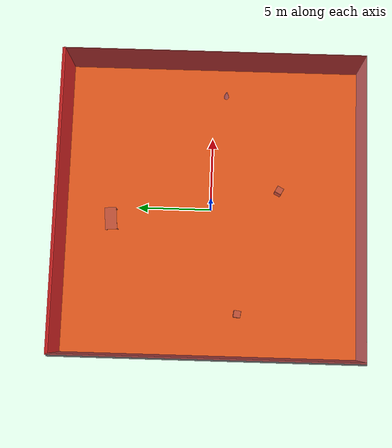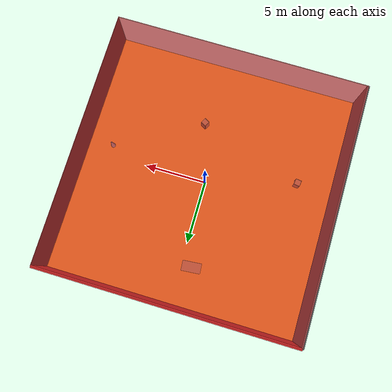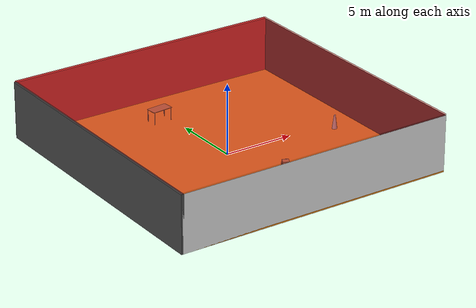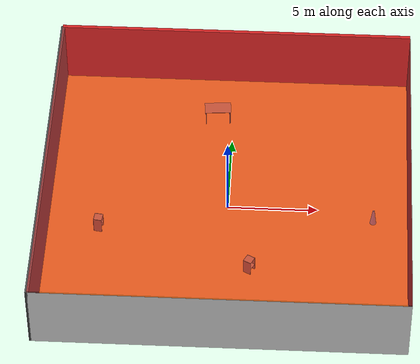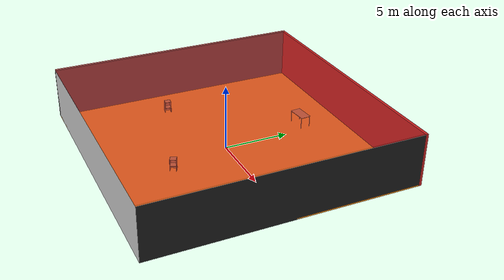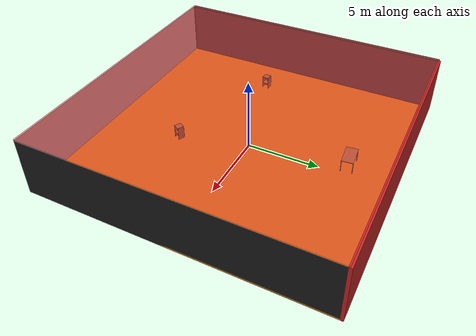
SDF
<sdf version="1.4">
 <world name="default">
  <physics type="ode">
   <max_step_size>0.001</max_step_size>
   <real_time_factor>1</real_time_factor>
   <real_time_update_rate>1000</real_time_update_rate>
   <gravity>0 0 -9.8</gravity>
  </physics>
  <scene><ambient>0.4 0.4 0.4 1</ambient><background>0.7 0.7 0.7 1</background><shadows>1</shadows></scene>
  <model name="Surrounding">
   <static>1</static>
   <link name="Ceiling">
    <collision name="Ceiling_Collision"><geometry><box><size>20 20 0.1</size></box></geometry></collision>
    <visual name="Ceiling_Visual">
     <geometry><box><size>20 20 0.1</size></box></geometry>
     <material>
      <script><uri>file://media/materials/scripts/gazebo.material</uri><name>Gazebo/RedTransparent</name></script>
     </material>
    </visual>
    <pose>0 0 4.05 0 0 0</pose>
   </link>
   <link name="Wall_South">
    <collision name="Wall_South_Collision">
     <geometry><box><size>20 0 4</size></box></geometry>
     <pose>0 0 2 0 -0 0</pose>
    </collision>
    <visual name="Wall_South_Visual">
     <pose>0 0 2 0 -0 0</pose>
     <geometry><box><size>20 0 4</size></box></geometry>
     <material>
      <script><uri>file://media/materials/scripts/gazebo.material</uri><name>Gazebo/WhiteGlow</name></script>
     </material>
    </visual>
    <velocity_decay><linear>0</linear><angular>0</angular></velocity_decay>
    <pose>0 -10 0 0 -0 0</pose>
   </link>
   <link name="Wall_East">
    <collision name="Wall_21_Collision">
     <geometry><box><size>20 0 4</size></box></geometry>
     <pose>0 0 2 0 -0 0</pose>
    </collision>
    <visual name="Wall_21_Visual">
     <pose>0 0 2 0 -0 0</pose>
     <geometry><box><size>20 0 4</size></box></geometry>
     <material>
      <script><uri>file://media/materials/scripts/gazebo.material</uri><name>Gazebo/Black</name></script>
     </material>
    </visual>
    <velocity_decay><linear>0</linear><angular>0</angular></velocity_decay>
    <pose>10 0 0 0 -0 1.5708</pose>
   </link>
   <link name="Wall_North">
    <collision name="Wall_22_Collision">
     <geometry><box><size>20 0.2 4</size></box></geometry>
     <pose>0 0 2 0 -0 0</pose>
    </collision>
    <visual name="Wall_22_Visual">
     <pose>0 0 2 0 -0 0</pose>
     <geometry><box><size>20 0.2 4</size></box></geometry>
     <material>
      <script><uri>file://media/materials/scripts/gazebo.material</uri><name>Gazebo/RedBright</name></script>
     </material>
    </visual>
    <velocity_decay><linear>0</linear><angular>0</angular></velocity_decay>
    <pose>0 10 0 0 -0 0</pose>
   </link>
   <link name="Wall_West">
    <collision name="Wall_23_Collision">
     <geometry><box><size>20 0.2 4</size></box></geometry>
     <pose>0 0 2 0 -0 0</pose>
    </collision>
    <visual name="Wall_23_Visual">
     <pose>0 0 2 0 -0 0</pose>
     <geometry><box><size>20 0.2 4</size></box></geometry>
     <material>
      <script><uri>file://media/materials/scripts/gazebo.material</uri><name>Gazebo/Road</name></script>
     </material>
    </visual>
    <velocity_decay><linear>0</linear><angular>0</angular></velocity_decay>
    <pose>-10 0 0 0 0 -1.5708</pose>
   </link>
   <link name="Ground_link">
    <collision name="collision">
     <pose>0 0 .05 0 -0 0</pose>
     <geometry><box><size>20 20 0.1</size></box></geometry>
    </collision>
    <visual name="visual">
     <pose>0 0 .05 0 -0 0</pose>
     <geometry><box><size>20 20 0.1</size></box></geometry>
     <material>
      <script><uri>file://media/materials/scripts/gazebo.material</uri><name>Gazebo/Orange</name></script>
     </material>
    </visual>
   </link>
   <static>1</static>
  </model>
  <spherical_coordinates>
   <surface_model>EARTH_WGS84</surface_model>
   <latitude_deg>0</latitude_deg>
   <longitude_deg>0</longitude_deg>
   <elevation>0</elevation>
   <heading_deg>0</heading_deg>
  </spherical_coordinates>
  <light name="lightball_0" type="diffuse">
   <diffuse>0.8 0.8 0.8 1</diffuse>
   <specular>0.2 0.2 0.2 1</specular>
   <attenuation>
    <range>100</range>
    <constant>0.7</constant>
    <linear>0.01</linear>
    <quadratic>0.001</quadratic>
   </attenuation>
   <direction>-0.5 0.1 -0.9</direction>
   <pose>9.5562394057 -4.61846901533 0.956193848532 0 0 0</pose>
  </light>
  <light name="lightball_1" type="diffuse">
   <diffuse>0.8 0.8 0.8 1</diffuse>
   <specular>0.2 0.2 0.2 1</specular>
   <attenuation>
    <range>100</range>
    <constant>0.7</constant>
    <linear>0.01</linear>
    <quadratic>0.001</quadratic>
   </attenuation>
   <direction>-0.5 0.1 -0.9</direction>
   <pose>3.09915094107 -2.31648687753 2.70738407003 0 0 0</pose>
  </light>
  <light name="lightball_2" type="diffuse">
   <diffuse>0.8 0.8 0.8 1</diffuse>
   <specular>0.2 0.2 0.2 1</specular>
   <attenuation>
    <range>100</range>
    <constant>0.7</constant>
    <linear>0.01</linear>
    <quadratic>0.001</quadratic>
   </attenuation>
   <direction>-0.5 0.1 -0.9</direction>
   <pose>-8.15995119929 6.70640957548 2.36723143993 0 0 0</pose>
  </light>
  <light name="lightball_3" type="diffuse">
   <diffuse>0.8 0.8 0.8 1</diffuse>
   <specular>0.2 0.2 0.2 1</specular>
   <attenuation>
    <range>100</range>
    <constant>0.7</constant>
    <linear>0.01</linear>
    <quadratic>0.001</quadratic>
   </attenuation>
   <direction>-0.5 0.1 -0.9</direction>
   <pose>3.13941032212 6.86291462505 3.77972783825 0 0 0</pose>
  </light>
  <light name="lightball_4" type="diffuse">
   <diffuse>0.8 0.8 0.8 1</diffuse>
   <specular>0.2 0.2 0.2 1</specular>
   <attenuation>
    <range>100</range>
    <constant>0.7</constant>
    <linear>0.01</linear>
    <quadratic>0.001</quadratic>
   </attenuation>
   <direction>-0.5 0.1 -0.9</direction>
   <pose>-2.41996733074 -9.47120662205 1.24570302308 0 0 0</pose>
  </light>
  <light name="lightball_5" type="diffuse">
   <diffuse>0.8 0.8 0.8 1</diffuse>
   <specular>0.2 0.2 0.2 1</specular>
   <attenuation>
    <range>100</range>
    <constant>0.7</constant>
    <linear>0.01</linear>
    <quadratic>0.001</quadratic>
   </attenuation>
   <direction>-0.5 0.1 -0.9</direction>
   <pose>-4.29115085179 -4.72998399222 3.77657135897 0 0 0</pose>
  </light>
  <light name="lightball_6" type="diffuse">
   <diffuse>0.8 0.8 0.8 1</diffuse>
   <specular>0.2 0.2 0.2 1</specular>
   <attenuation>
    <range>100</range>
    <constant>0.7</constant>
    <linear>0.01</linear>
    <quadratic>0.001</quadratic>
   </attenuation>
   <direction>-0.5 0.1 -0.9</direction>
   <pose>-4.34633316217 -5.37329020688 3.39759021633 0 0 0</pose>
  </light>
  <light name="lightball_7" type="diffuse">
   <diffuse>0.8 0.8 0.8 1</diffuse>
   <specular>0.2 0.2 0.2 1</specular>
   <attenuation>
    <range>100</range>
    <constant>0.7</constant>
    <linear>0.01</linear>
    <quadratic>0.001</quadratic>
   </attenuation>
   <direction>-0.5 0.1 -0.9</direction>
   <pose>0.699914754146 -7.47073976604 3.13539956763 0 0 0</pose>
  </light>
  <light name="lightball_8" type="diffuse">
   <diffuse>0.8 0.8 0.8 1</diffuse>
   <specular>0.2 0.2 0.2 1</specular>
   <attenuation>
    <range>100</range>
    <constant>0.7</constant>
    <linear>0.01</linear>
    <quadratic>0.001</quadratic>
   </attenuation>
   <direction>-0.5 0.1 -0.9</direction>
   <pose>-5.84213589261 -8.54724293551 2.72593607641 0 0 0</pose>
  </light>
  <light name="lightball_9" type="diffuse">
   <diffuse>0.8 0.8 0.8 1</diffuse>
   <specular>0.2 0.2 0.2 1</specular>
   <attenuation>
    <range>100</range>
    <constant>0.7</constant>
    <linear>0.01</linear>
    <quadratic>0.001</quadratic>
   </attenuation>
   <direction>-0.5 0.1 -0.9</direction>
   <pose>5.75602710478 8.42817699697 3.81231335124 0 0 0</pose>
  </light>
  <light name="lightball_10" type="diffuse">
   <diffuse>0.8 0.8 0.8 1</diffuse>
   <specular>0.2 0.2 0.2 1</specular>
   <attenuation>
    <range>100</range>
    <constant>0.7</constant>
    <linear>0.01</linear>
    <quadratic>0.001</quadratic>
   </attenuation>
   <direction>-0.5 0.1 -0.9</direction>
   <pose>0.952762198484 4.44224810596 3.22748892751 0 0 0</pose>
  </light>
  <include><uri>model://cabinet</uri><pose>-7.07259884803 -1.95412771271 0 0 0 3.00660246453</pose></include>
  <include><uri>model://table</uri><pose>-0.899551818022 6.75540428772 0 0 0 0.0845776789085</pose></include>
  <include><uri>model://cabinet</uri><pose>1.36375567272 -4.630362915 0 0 0 2.65318258401</pose></include>
  <include>
   <uri>model://construction_cone</uri>
   <pose>8.08834541426 -0.862313522174 0 0 0 2.48911350395</pose>
  </include>
 </world>
</sdf>

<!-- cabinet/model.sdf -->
<sdf version="1.5">
  <model name="cabinet">
    <static>true</static>
    <link name="cabinet_bottom_plate">
      <inertial>
        <pose>0 0 -1 0 0 0</pose>
        <inertia>
          <ixx>2.050000</ixx>
          <ixy>0</ixy>
          <ixz>0</ixz>
          <iyy>2.050000</iyy>
          <iyz>0</iyz>
          <izz>2.050000</izz>
        </inertia>
        <mass>25.000000</mass>
      </inertial>
      <collision name="cabinet_bottom_plate_geom">
        <pose>0 0 0.010000 0 0 0</pose>
        <geometry>
          <box>
            <size>0.450000 0.450000 0.020000</size>
          </box>
        </geometry>
      </collision>
      <visual name="cabinet_bottom_plate_geom_visual">
        <pose>0 0 0.010000 0 0 0</pose>
        <geometry>
          <box>
            <size>0.450000 0.450000 0.020000</size>
          </box>
        </geometry>
        <material>
          <script>
            <uri>model://media/materials/scripts/gazebo.material</uri>
            <name>Gazebo/Wood</name>
          </script>
        </material>
      </visual>
      <collision name="cabinet_bottom_plate_geom_cabinet_back_plate">
        <pose>0.235000 0 0.510000 0 0 0</pose>
        <geometry>
          <box>
            <size>0.020000 0.450000 1.020000</size>
          </box>
        </geometry>
      </collision>
      <visual name="cabinet_bottom_plate_geom_cabinet_back_plate_visual">
        <pose>0.235000 0 0.510000 0 0 0</pose>
        <geometry>
          <box>
            <size>0.020000 0.450000 1.020000</size>
          </box>
        </geometry>
        <material>
          <script>
            <uri>model://media/materials/scripts/gazebo.material</uri>
            <name>Gazebo/Wood</name>
          </script>
        </material>
      </visual>
      <collision name="cabinet_bottom_plate_geom_cabinet_left_plate">
        <pose>0 0.235000 0.510000 0 0 0</pose>
        <geometry>
          <box>
            <size>0.450000 0.020000 1.020000</size>
          </box>
        </geometry>
      </collision>
      <visual name="cabinet_bottom_plate_geom_cabinet_left_plate_visual">
        <pose>0 0.235000 0.510000 0 0 0</pose>
        <geometry>
          <box>
            <size>0.450000 0.020000 1.020000</size>
          </box>
        </geometry>
        <material>
          <script>
            <uri>model://media/materials/scripts/gazebo.material</uri>
            <name>Gazebo/Wood</name>
          </script>
        </material>
      </visual>
      <collision name="cabinet_bottom_plate_geom_cabinet_middle_plate">
        <pose>0 0 0.510000 0 0 0</pose>
        <geometry>
          <box>
            <size>0.450000 0.450000 0.020000</size>
          </box>
        </geometry>
      </collision>
      <visual name="cabinet_bottom_plate_geom_cabinet_middle_plate_visual">
        <pose>0 0 0.510000 0 0 0</pose>
        <geometry>
          <box>
            <size>0.450000 0.450000 0.020000</size>
          </box>
        </geometry>
        <material>
          <script>
            <uri>model://media/materials/scripts/gazebo.material</uri>
            <name>Gazebo/Wood</name>
          </script>
        </material>
      </visual>
      <collision name="cabinet_bottom_plate_geom_cabinet_right_plate">
        <pose>0 -0.235000 0.510000 0 0 0</pose>
        <geometry>
          <box>
            <size>0.450000 0.020000 1.020000</size>
          </box>
        </geometry>
      </collision>
      <visual name="cabinet_bottom_plate_geom_cabinet_right_plate_visual">
        <pose>0 -0.235000 0.510000 0 0 0</pose>
        <geometry>
          <box>
            <size>0.450000 0.020000 1.020000</size>
          </box>
        </geometry>
        <material>
          <script>
            <uri>model://media/materials/scripts/gazebo.material</uri>
            <name>Gazebo/Wood</name>
          </script>
        </material>
      </visual>
      <collision name="cabinet_bottom_plate_geom_cabinet_top_plate">
        <pose>0 0 1.010000 0 0 0</pose>
        <geometry>
          <box>
            <size>0.450000 0.450000 0.020000</size>
          </box>
        </geometry>
      </collision>
      <visual name="cabinet_bottom_plate_geom_cabinet_top_plate_visual">
        <pose>0 0 1.010000 0 0 0</pose>
        <geometry>
          <box>
            <size>0.450000 0.450000 0.020000</size>
          </box>
        </geometry>
        <material>
          <script>
            <uri>model://media/materials/scripts/gazebo.material</uri>
            <name>Gazebo/Wood</name>
          </script>
        </material>
      </visual>
    </link>
  </model>
</sdf>

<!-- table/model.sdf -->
<sdf version="1.5">
  <model name="table">
    <static>true</static>
    <link name="link">
      <collision name="surface">
        <pose>0 0 1.0 0 0 0</pose>
        <geometry>
          <box>
            <size>1.5 0.8 0.03</size>
          </box>
        </geometry>
        <surface>
          <friction>
            <ode>
              <mu>0.6</mu>
              <mu2>0.6</mu2>
            </ode>
          </friction>
        </surface>
      </collision>
      <visual name="visual1">
        <pose>0 0 1.0 0 0 0</pose>
        <geometry>
          <box>
            <size>1.5 0.8 0.03</size>
          </box>
        </geometry>
        <material>
          <script>
            <uri>model://media/materials/scripts/gazebo.material</uri>
            <name>Gazebo/Wood</name>
          </script>
        </material>
      </visual>
      <collision name="front_left_leg">
        <pose>0.68 0.38 0.5 0 0 0</pose>
        <geometry>
          <cylinder>
            <radius>0.02</radius>
            <length>1.0</length>
          </cylinder>
        </geometry>
      </collision>
      <visual name="front_left_leg">
        <pose>0.68 0.38 0.5 0 0 0</pose>
        <geometry>
          <cylinder>
            <radius>0.02</radius>
            <length>1.0</length>
          </cylinder>
        </geometry>
        <material>
          <script>
            <uri>model://media/materials/scripts/gazebo.material</uri>
            <name>Gazebo/Grey</name>
          </script>
        </material>
      </visual>
      <collision name="front_right_leg">
        <pose>0.68 -0.38 0.5 0 0 0</pose>
        <geometry>
          <cylinder>
            <radius>0.02</radius>
            <length>1.0</length>
          </cylinder>
        </geometry>
      </collision>
      <visual name="front_right_leg">
        <pose>0.68 -0.38 0.5 0 0 0</pose>
        <geometry>
          <cylinder>
            <radius>0.02</radius>
            <length>1.0</length>
          </cylinder>
        </geometry>
        <material>
          <script>
            <uri>model://media/materials/scripts/gazebo.material</uri>
            <name>Gazebo/Grey</name>
          </script>
        </material>
      </visual>
      <collision name="back_right_leg">
        <pose>-0.68 -0.38 0.5 0 0 0</pose>
        <geometry>
          <cylinder>
            <radius>0.02</radius>
            <length>1.0</length>
          </cylinder>
        </geometry>
      </collision>
      <visual name="back_right_leg">
        <pose>-0.68 -0.38 0.5 0 0 0</pose>
        <geometry>
          <cylinder>
            <radius>0.02</radius>
            <length>1.0</length>
          </cylinder>
        </geometry>
        <material>
          <script>
            <uri>model://media/materials/scripts/gazebo.material</uri>
            <name>Gazebo/Grey</name>
          </script>
        </material>
      </visual>
      <collision name="back_left_leg">
        <pose>-0.68 0.38 0.5 0 0 0</pose>
        <geometry>
          <cylinder>
            <radius>0.02</radius>
            <length>1.0</length>
          </cylinder>
        </geometry>
      </collision>
      <visual name="back_left_leg">
        <pose>-0.68 0.38 0.5 0 0 0</pose>
        <geometry>
          <cylinder>
            <radius>0.02</radius>
            <length>1.0</length>
          </cylinder>
        </geometry>
        <material>
          <script>
            <uri>model://media/materials/scripts/gazebo.material</uri>
            <name>Gazebo/Grey</name>
          </script>
        </material>
      </visual>
    </link>
  </model>
</sdf>

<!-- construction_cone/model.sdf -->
<sdf version="1.5">
  <model name="Construction Cone">
    <link name="link">
      <collision name="collision">
        <geometry>
          <mesh>
            <scale>10 10 10</scale>
            <uri>file://isr-testbed/construction_cone/meshes/construction_cone.dae</uri>
          </mesh>
        </geometry>
      </collision>
      <visual name="visual">
        <geometry>
          <mesh>
            <scale>10 10 10</scale>
            <uri>file://isr-testbed/construction_cone/meshes/construction_cone.dae</uri>
          </mesh>
        </geometry>
      </visual>
    </link>
  </model>
</sdf>
